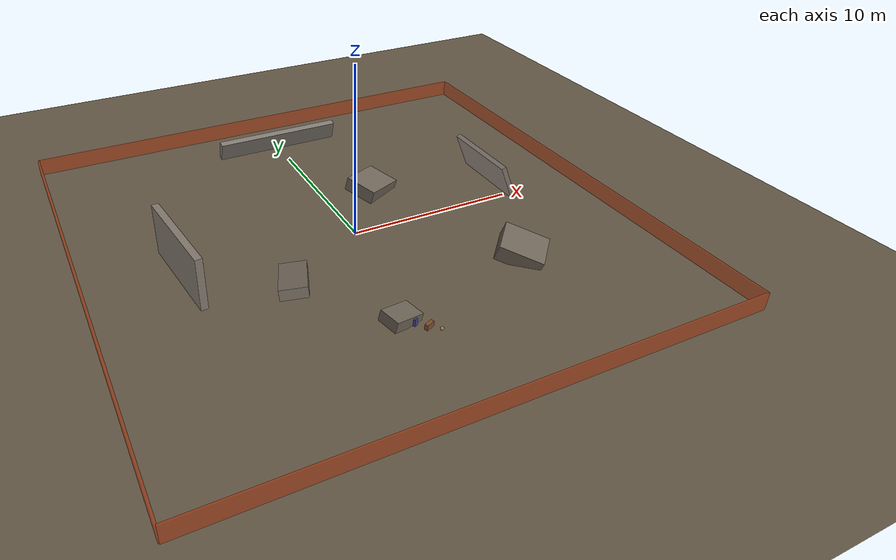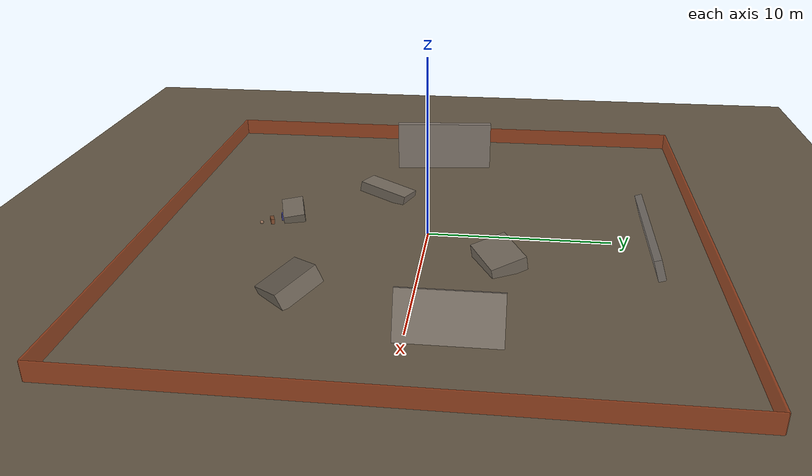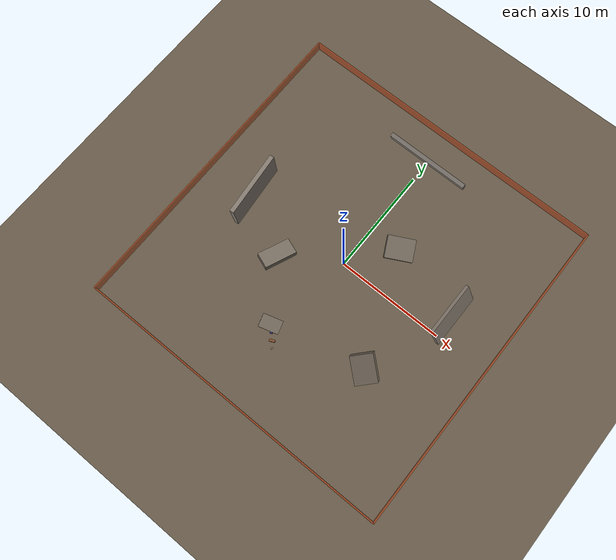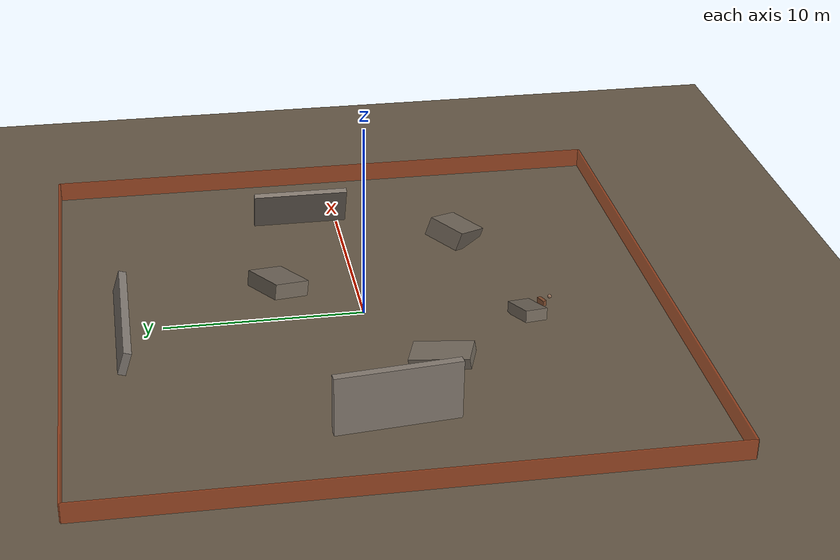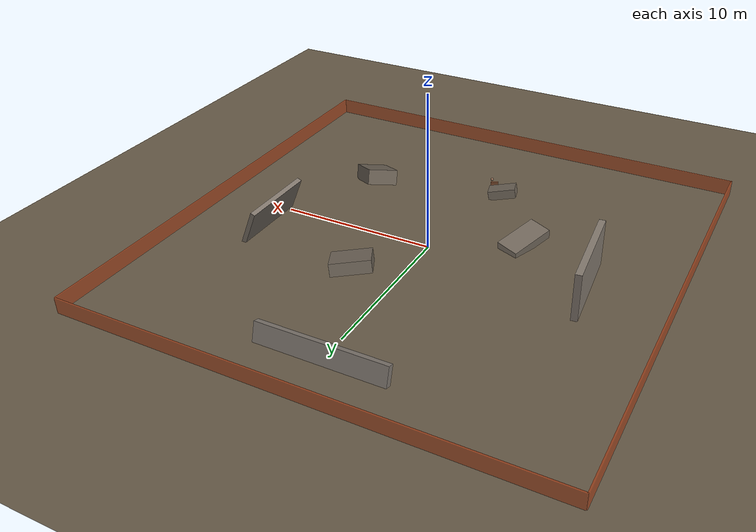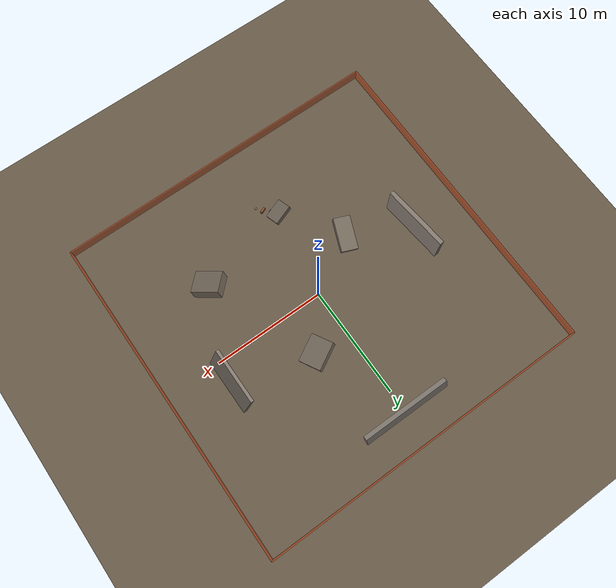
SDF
<?xml version="1.0"?>

<sdf version="1.9">
  <world name="sentinel_disaster_zone">

    <!-- Physics: real-time factor 1.0, 1kHz step (matches ESP32 800Hz PID) -->
    <physics name="fast_physics" type="dart">
      <max_step_size>0.001</max_step_size>
      <real_time_factor>1.0</real_time_factor>
      <real_time_update_rate>1000</real_time_update_rate>
    </physics>

    <!-- Plugins -->
    <plugin filename="gz-sim-physics-system"        name="gz::sim::systems::Physics"/>
    <plugin filename="gz-sim-sensors-system"        name="gz::sim::systems::Sensors">
      <render_engine>ogre2</render_engine>
    </plugin>
    <plugin filename="gz-sim-scene-broadcaster-system" name="gz::sim::systems::SceneBroadcaster"/>
    <plugin filename="gz-sim-user-commands-system"  name="gz::sim::systems::UserCommands"/>
    <plugin filename="gz-sim-imu-system"            name="gz::sim::systems::Imu"/>
    <plugin filename="gz-sim-contact-system"        name="gz::sim::systems::Contact"/>

    <!-- ── Lighting ──────────────────────────────────────────────────────── -->
    <light name="sun" type="directional">
      <pose>0 0 100 0 0 0</pose>
      <diffuse>0.85 0.80 0.70 1</diffuse>
      <specular>0.2 0.2 0.2 1</specular>
      <direction>-0.5 0.3 -0.8</direction>
      <cast_shadows>true</cast_shadows>
    </light>

    <!-- Low ambient light (simulates smoky disaster environment) -->
    <scene>
      <ambient>0.25 0.22 0.20 1.0</ambient>
      <background>0.5 0.48 0.44 1.0</background>
      <shadows>true</shadows>
      <fog>
        <color>0.70 0.65 0.60 1.0</color>
        <type>linear</type>
        <start>15.0</start>
        <end>45.0</end>
        <density>0.3</density>
      </fog>
    </scene>

    <!-- ── Ground Plane ───────────────────────────────────────────────────── -->
    <model name="ground_plane">
      <static>true</static>
      <link name="link">
        <collision name="col">
          <geometry><plane><normal>0 0 1</normal><size>50 50</size></plane></geometry>
          <surface>
            <friction><ode><mu>0.8</mu><mu2>0.8</mu2></ode></friction>
          </surface>
        </collision>
        <visual name="vis">
          <geometry><plane><normal>0 0 1</normal><size>50 50</size></plane></geometry>
          <material>
            <ambient>0.35 0.30 0.25 1</ambient>
            <diffuse>0.40 0.35 0.28 1</diffuse>
          </material>
        </visual>
      </link>
    </model>

    <!-- ═══════════════════════════════════════════════════════════════════
         COLLAPSED BUILDING WALLS
    ═══════════════════════════════════════════════════════════════════════ -->

    <!-- Wall section 1: Large collapsed slab (North) -->
    <model name="slab_north">
      <static>true</static>
      <pose>0 12 0.6 0.3 0 0</pose>
      <link name="link">
        <collision name="col">
          <geometry><box><size>8.0 0.4 1.2</size></box></geometry>
        </collision>
        <visual name="vis">
          <geometry><box><size>8.0 0.4 1.2</size></box></geometry>
          <material><ambient>0.45 0.42 0.40 1</ambient><diffuse>0.50 0.47 0.44 1</diffuse></material>
        </visual>
      </link>
    </model>

    <!-- Wall section 2: Standing partial wall (West) -->
    <model name="wall_west">
      <static>true</static>
      <pose>-10 0 1.5 0 0 0.1</pose>
      <link name="link">
        <collision name="col">
          <geometry><box><size>0.4 6.0 3.0</size></box></geometry>
        </collision>
        <visual name="vis">
          <geometry><box><size>0.4 6.0 3.0</size></box></geometry>
          <material><ambient>0.48 0.44 0.40 1</ambient><diffuse>0.52 0.48 0.44 1</diffuse></material>
        </visual>
      </link>
    </model>

    <!-- Wall section 3: Leaning wall (East) -->
    <model name="wall_east_leaning">
      <static>true</static>
      <pose>10 2 1.0 0 -0.4 0</pose>
      <link name="link">
        <collision name="col">
          <geometry><box><size>0.3 5.0 2.5</size></box></geometry>
        </collision>
        <visual name="vis">
          <geometry><box><size>0.3 5.0 2.5</size></box></geometry>
          <material><ambient>0.45 0.42 0.40 1</ambient><diffuse>0.50 0.46 0.42 1</diffuse></material>
        </visual>
      </link>
    </model>

    <!-- ═══════════════════════════════════════════════════════════════════
         RUBBLE PILES (irregular obstacle clusters)
    ═══════════════════════════════════════════════════════════════════════ -->

    <!-- Rubble pile 1 -->
    <model name="rubble_1">
      <static>true</static>
      <pose>3 4 0.4 0.2 0.1 0.5</pose>
      <link name="link">
        <collision name="col"><geometry><box><size>2.5 2.0 0.8</size></box></geometry></collision>
        <visual name="vis">
          <geometry><box><size>2.5 2.0 0.8</size></box></geometry>
          <material><ambient>0.40 0.37 0.33 1</ambient><diffuse>0.45 0.41 0.36 1</diffuse></material>
        </visual>
      </link>
    </model>

    <!-- Rubble pile 2 -->
    <model name="rubble_2">
      <static>true</static>
      <pose>-5 -3 0.3 -0.1 0.15 1.2</pose>
      <link name="link">
        <collision name="col"><geometry><box><size>3.0 1.5 0.6</size></box></geometry></collision>
        <visual name="vis">
          <geometry><box><size>3.0 1.5 0.6</size></box></geometry>
          <material><ambient>0.42 0.38 0.34 1</ambient><diffuse>0.46 0.42 0.37 1</diffuse></material>
        </visual>
      </link>
    </model>

    <!-- Rubble pile 3 -->
    <model name="rubble_3">
      <static>true</static>
      <pose>7 -6 0.5 0.3 -0.2 0.8</pose>
      <link name="link">
        <collision name="col"><geometry><box><size>2.0 2.5 1.0</size></box></geometry></collision>
        <visual name="vis">
          <geometry><box><size>2.0 2.5 1.0</size></box></geometry>
          <material><ambient>0.38 0.35 0.31 1</ambient><diffuse>0.43 0.39 0.34 1</diffuse></material>
        </visual>
      </link>
    </model>

    <!-- Rubble pile 4: Near casualty (partially obscures victim → tests occlusion) -->
    <model name="rubble_near_casualty">
      <static>true</static>
      <pose>-1.5 -8 0.3 0.1 0.2 0.3</pose>
      <link name="link">
        <collision name="col"><geometry><box><size>1.8 1.2 0.6</size></box></geometry></collision>
        <visual name="vis">
          <geometry><box><size>1.8 1.2 0.6</size></box></geometry>
          <material><ambient>0.40 0.36 0.32 1</ambient><diffuse>0.44 0.40 0.35 1</diffuse></material>
        </visual>
      </link>
    </model>

    <!-- Torso -->
    <model name="casualty_torso">
      <static>true</static>
      <pose>-0.5 -9 0.15 1.5708 0 0.4</pose>
      <link name="link">
        <collision name="col"><geometry><box><size>0.50 0.30 0.20</size></box></geometry></collision>
        <visual name="vis">
          <geometry><box><size>0.50 0.30 0.20</size></box></geometry>
          <material><ambient>0.40 0.25 0.15 1</ambient><diffuse>0.50 0.30 0.18 1</diffuse></material>
        </visual>
      </link>
    </model>

    <!-- Head -->
    <model name="casualty_head">
      <static>true</static>
      <pose>-0.1 -9.5 0.18 0 0 0</pose>
      <link name="link">
        <collision name="col"><geometry><sphere><radius>0.10</radius></sphere></geometry></collision>
        <visual name="vis">
          <geometry><sphere><radius>0.10</radius></sphere></geometry>
          <material><ambient>0.55 0.40 0.30 1</ambient><diffuse>0.60 0.45 0.35 1</diffuse></material>
        </visual>
      </link>
    </model>

    <!-- Legs -->
    <model name="casualty_legs">
      <static>true</static>
      <pose>-1.0 -8.5 0.10 1.5708 0 0.4</pose>
      <link name="link">
        <collision name="col"><geometry><box><size>0.20 0.55 0.18</size></box></geometry></collision>
        <visual name="vis">
          <geometry><box><size>0.20 0.55 0.18</size></box></geometry>
          <material><ambient>0.20 0.20 0.50 1</ambient><diffuse>0.25 0.25 0.55 1</diffuse></material>
        </visual>
      </link>
    </model>

    <model name="boundary_n"><static>true</static><pose>0 15 0.5 0 0 0</pose>
      <link name="link"><visual name="v"><geometry><box><size>30 0.1 1.0</size></box></geometry>
      <material><ambient>0.8 0.2 0.0 0.5</ambient></material></visual></link></model>

    <model name="boundary_s"><static>true</static><pose>0 -15 0.5 0 0 0</pose>
      <link name="link"><visual name="v"><geometry><box><size>30 0.1 1.0</size></box></geometry>
      <material><ambient>0.8 0.2 0.0 0.5</ambient></material></visual></link></model>

    <model name="boundary_e"><static>true</static><pose>15 0 0.5 0 0 0</pose>
      <link name="link"><visual name="v"><geometry><box><size>0.1 30 1.0</size></box></geometry>
      <material><ambient>0.8 0.2 0.0 0.5</ambient></material></visual></link></model>

    <model name="boundary_w"><static>true</static><pose>-15 0 0.5 0 0 0</pose>
      <link name="link"><visual name="v"><geometry><box><size>0.1 30 1.0</size></box></geometry>
      <material><ambient>0.8 0.2 0.0 0.5</ambient></material></visual></link></model>

  </world>
</sdf>
